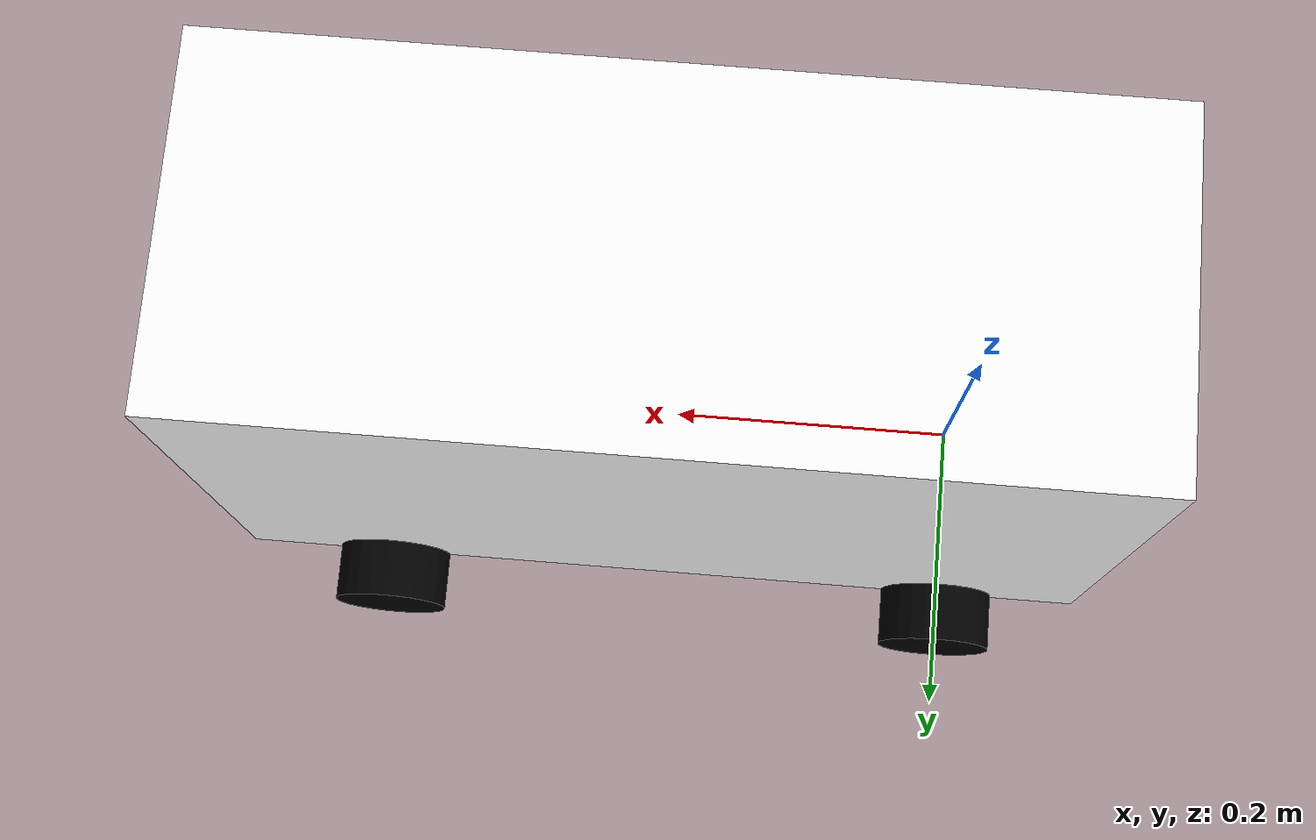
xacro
<?xml version="1.0"?>
<robot xmlns:xacro="http://www.ros.org/wiki/xacro">

    <xacro:include filename="inertial_macros.xacro"/>

    <material name="white">
        <color rgba="1 1 1 1" />
    </material>

    <material name="orange">
        <color rgba="1 0.3 0.1 1" />
    </material>

    <material name="blue">
        <color rgba="0.2 0.2 1 1" />
    </material>

    <material name="black">
        <color rgba="0 0 0 1" />
    </material>

    <material name="gray">
        <color rgba="0.2 0.3 0.5 1" />
    </material>

    <material name="red">
        <color rgba="1 0 0 1" />
    </material>

    <!-- BASE LINK -->

    <link name="base_link">

    </link>

    <!-- CHASSIS LINK -->

    <joint name="chassis_joint" type="fixed">
        <parent link="base_link"/>
        <child link="chassis"/>
        <origin xyz="-0.1 0 0"/>
    </joint>

    <link name="chassis">
        <visual>
            <origin xyz="0.3025 0 0.1875"/>
            <geometry>
                <box size="0.605 0.24 0.375"/>
            </geometry>
            <material name="white"/>
        </visual>
        <collision>
            <origin xyz="0.3025 0 0.1875"/>
            <geometry>
                <box size="0.605 0.375 0.24"/>
            </geometry>
        </collision>
        <xacro:inertial_box mass="0.5" x="0.605" y="0.375" z="0.24">
            <origin xyz="0.3025 0 0.1875" rpy="0 0 0"/>
        </xacro:inertial_box>
    </link>

    <gazebo reference="chassis">
        <material>Gazebo/White</material>
    </gazebo>

    <!-- LEFT BACK WHEEL LINK -->

    <joint name="left_back_wheel_joint" type="continuous">
        <parent link="base_link"/>
        <child link="left_back_wheel"/>
        <origin xyz="0 0.14 0" rpy="-${pi/2} 0 0"/>
        <axis xyz="0 0 1"/>
    </joint>

    <link name="left_back_wheel">
        <visual>
            <geometry>
                <cylinder radius="0.04" length="0.04"/>
            </geometry>
            <material name="black"/>
        </visual>
        <collision>
            <geometry>
                <sphere radius="0.04"/>
            </geometry>
        </collision>
        <xacro:inertial_cylinder mass="0.1" length="0.04" radius="0.04">
            <origin xyz="0 0 0" rpy="0 0 0"/>
        </xacro:inertial_cylinder>
    </link>

    <gazebo reference="left_back_wheel">
        <material>Gazebo/Black</material>
    </gazebo>

    <!-- LEFT FRONT WHEEL LINK -->

    <joint name="left_front_wheel_joint" type="continuous">
        <parent link="base_link"/>
        <child link="left_front_wheel"/>
        <origin xyz="0.4 0.14 0" rpy="-${pi/2} 0 0"/>
        <axis xyz="0 0 1"/>
    </joint>

    <link name="left_front_wheel">
        <visual>
            <geometry>
                <cylinder radius="0.04" length="0.04"/>
            </geometry>
            <material name="black"/>
        </visual>
        <collision>
            <geometry>
                <sphere radius="0.04"/>
            </geometry>
        </collision>
        <xacro:inertial_cylinder mass="0.1" length="0.04" radius="0.04">
            <origin xyz="0 0 0" rpy="0 0 0"/>
        </xacro:inertial_cylinder>
    </link>

    <gazebo reference="left_front_wheel">
        <material>Gazebo/Black</material>
    </gazebo>

    <!-- RIGHT BACK WHEEL LINK -->

    <joint name="right_back_wheel_joint" type="continuous">
        <parent link="base_link"/>
        <child link="right_back_wheel"/>
        <origin xyz="0 -0.14 0" rpy="${pi/2} 0 0"/>
        <axis xyz="0 0 -1"/>
    </joint>

    <link name="right_back_wheel">
        <visual>
            <geometry>
                <cylinder radius="0.04" length="0.04"/>
            </geometry>
            <material name="black"/>
        </visual>
        <collision>
            <geometry>
                <sphere radius="0.04"/>
            </geometry>
        </collision>
        <xacro:inertial_cylinder mass="0.1" length="0.04" radius="0.04">
            <origin xyz="0 0 0" rpy="0 0 0"/>
        </xacro:inertial_cylinder>
    </link>

    <gazebo reference="right_back_wheel">
        <material>Gazebo/Black</material>
    </gazebo>

    <!-- RIGHT FRONT WHEEL LINK -->

    <joint name="right_front_wheel_joint" type="continuous">
        <parent link="base_link"/>
        <child link="right_front_wheel"/>
        <origin xyz="0.4 -0.14 0" rpy="${pi/2} 0 0"/>
        <axis xyz="0 0 -1"/>
    </joint>

    <link name="right_front_wheel">
        <visual>
            <geometry>
                <cylinder radius="0.04" length="0.04"/>
            </geometry>
            <material name="black"/>
        </visual>
        <collision>
            <geometry>
                <sphere radius="0.04"/>
            </geometry>
        </collision>
        <xacro:inertial_cylinder mass="0.1" length="0.04" radius="0.04">
            <origin xyz="0 0 0" rpy="0 0 0"/>
        </xacro:inertial_cylinder>
    </link>

    <gazebo reference="right_front_wheel">
        <material>Gazebo/Black</material>
    </gazebo>

</robot>
